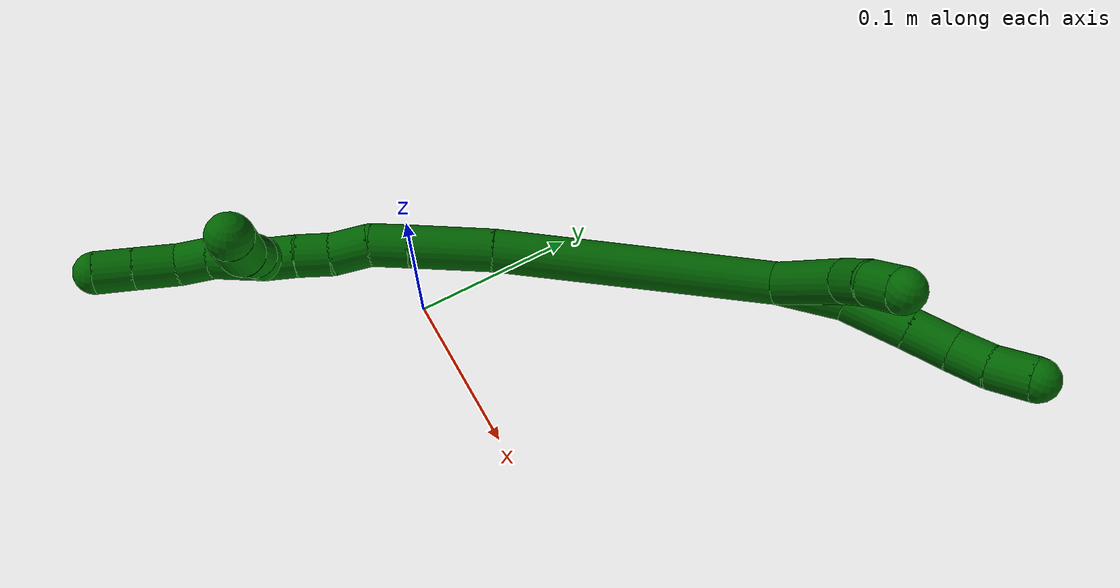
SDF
<sdf version="1.7">
 <world name="default">
  <model name="6">
   <static>0</static>
   <link name="6">
    <collision name="collision-cylinder-e_1_2_8">
     <pose>0.004878 0.018597 -0.003097 -1.73583 0.253167 -0.298197</pose>
     <geometry><cylinder><radius>0.0125</radius><length>0.038948</length></cylinder></geometry>
     <surface>
      <friction><ode><mu>1.16</mu><mu2>1.16</mu2><slip1>0</slip1><slip2>0</slip2></ode></friction>
      <contact><ode><kp>1e+06</kp><kd>1</kd><max_vel>0</max_vel><min_depth>0.001</min_depth></ode></contact>
     </surface>
    </collision>
    <visual name="visual-cylinder-e_1_2_8">
     <pose>0.004878 0.018597 -0.003097 -1.73583 0.253167 -0.298197</pose>
     <geometry><cylinder><radius>0.0125</radius><length>0.038948</length></cylinder></geometry>
     <material><ambient>0 0.392157 0.003922 1</ambient></material>
    </visual>
    <collision name="collision-cylinder-e_2_8_9">
     <pose>0.009577 0.056249 -0.008538 -1.69314 -0.009307 0.010522</pose>
     <geometry><cylinder><radius>0.0125</radius><length>0.038399</length></cylinder></geometry>
     <surface>
      <friction><ode><mu>1.16</mu><mu2>1.16</mu2><slip1>0</slip1><slip2>0</slip2></ode></friction>
      <contact><ode><kp>1e+06</kp><kd>1</kd><max_vel>0</max_vel><min_depth>0.001</min_depth></ode></contact>
     </surface>
    </collision>
    <visual name="visual-cylinder-e_2_8_9">
     <pose>0.009577 0.056249 -0.008538 -1.69314 -0.009307 0.010522</pose>
     <geometry><cylinder><radius>0.0125</radius><length>0.038399</length></cylinder></geometry>
     <material><ambient>0 0.392157 0.003922 1</ambient></material>
    </visual>
    <collision name="collision-cylinder-e_3_9_10">
     <pose>0.00883 0.088305 -0.012533 -1.69727 -0.04327 0.049118</pose>
     <geometry><cylinder><radius>0.0125</radius><length>0.026236</length></cylinder></geometry>
     <surface>
      <friction><ode><mu>1.16</mu><mu2>1.16</mu2><slip1>0</slip1><slip2>0</slip2></ode></friction>
      <contact><ode><kp>1e+06</kp><kd>1</kd><max_vel>0</max_vel><min_depth>0.001</min_depth></ode></contact>
     </surface>
    </collision>
    <visual name="visual-cylinder-e_3_9_10">
     <pose>0.00883 0.088305 -0.012533 -1.69727 -0.04327 0.049118</pose>
     <geometry><cylinder><radius>0.0125</radius><length>0.026236</length></cylinder></geometry>
     <material><ambient>0 0.392157 0.003922 1</ambient></material>
    </visual>
    <collision name="collision-cylinder-e_4_10_11">
     <pose>0.005948 0.111704 -0.017719 -1.89828 -0.207783 0.289052</pose>
     <geometry><cylinder><radius>0.0125</radius><length>0.022447</length></cylinder></geometry>
     <surface>
      <friction><ode><mu>1.16</mu><mu2>1.16</mu2><slip1>0</slip1><slip2>0</slip2></ode></friction>
      <contact><ode><kp>1e+06</kp><kd>1</kd><max_vel>0</max_vel><min_depth>0.001</min_depth></ode></contact>
     </surface>
    </collision>
    <visual name="visual-cylinder-e_4_10_11">
     <pose>0.005948 0.111704 -0.017719 -1.89828 -0.207783 0.289052</pose>
     <geometry><cylinder><radius>0.0125</radius><length>0.022447</length></cylinder></geometry>
     <material><ambient>0 0.392157 0.003922 1</ambient></material>
    </visual>
    <collision name="collision-cylinder-e_5_11_6">
     <pose>0.002191 0.132745 -0.026572 -2.03434 -0.120552 0.194654</pose>
     <geometry><cylinder><radius>0.0125</radius><length>0.023971</length></cylinder></geometry>
     <surface>
      <friction><ode><mu>1.16</mu><mu2>1.16</mu2><slip1>0</slip1><slip2>0</slip2></ode></friction>
      <contact><ode><kp>1e+06</kp><kd>1</kd><max_vel>0</max_vel><min_depth>0.001</min_depth></ode></contact>
     </surface>
    </collision>
    <visual name="visual-cylinder-e_5_11_6">
     <pose>0.002191 0.132745 -0.026572 -2.03434 -0.120552 0.194654</pose>
     <geometry><cylinder><radius>0.0125</radius><length>0.023971</length></cylinder></geometry>
     <material><ambient>0 0.392157 0.003922 1</ambient></material>
    </visual>
    <collision name="collision-cylinder-e_1_2_12">
     <pose>-0.008219 0.016655 -0.021108 -2.47358 -0.296652 0.813216</pose>
     <geometry><cylinder><radius>0.0125</radius><length>0.056232</length></cylinder></geometry>
     <surface>
      <friction><ode><mu>1.16</mu><mu2>1.16</mu2><slip1>0</slip1><slip2>0</slip2></ode></friction>
      <contact><ode><kp>1e+06</kp><kd>1</kd><max_vel>0</max_vel><min_depth>0.001</min_depth></ode></contact>
     </surface>
    </collision>
    <visual name="visual-cylinder-e_1_2_12">
     <pose>-0.008219 0.016655 -0.021108 -2.47358 -0.296652 0.813216</pose>
     <geometry><cylinder><radius>0.0125</radius><length>0.056232</length></cylinder></geometry>
     <material><ambient>0 0.392157 0.003922 1</ambient></material>
    </visual>
    <collision name="collision-cylinder-e_2_12_13">
     <pose>-0.021418 0.039017 -0.050333 -2.52882 -0.465213 1.28551</pose>
     <geometry><cylinder><radius>0.0125</radius><length>0.022203</length></cylinder></geometry>
     <surface>
      <friction><ode><mu>1.16</mu><mu2>1.16</mu2><slip1>0</slip1><slip2>0</slip2></ode></friction>
      <contact><ode><kp>1e+06</kp><kd>1</kd><max_vel>0</max_vel><min_depth>0.001</min_depth></ode></contact>
     </surface>
    </collision>
    <visual name="visual-cylinder-e_2_12_13">
     <pose>-0.021418 0.039017 -0.050333 -2.52882 -0.465213 1.28551</pose>
     <geometry><cylinder><radius>0.0125</radius><length>0.022203</length></cylinder></geometry>
     <material><ambient>0 0.392157 0.003922 1</ambient></material>
    </visual>
    <collision name="collision-cylinder-e_3_13_5">
     <pose>-0.030519 0.052239 -0.064991 -2.28694 -0.39217 0.82262</pose>
     <geometry><cylinder><radius>0.0125</radius><length>0.021565</length></cylinder></geometry>
     <surface>
      <friction><ode><mu>1.16</mu><mu2>1.16</mu2><slip1>0</slip1><slip2>0</slip2></ode></friction>
      <contact><ode><kp>1e+06</kp><kd>1</kd><max_vel>0</max_vel><min_depth>0.001</min_depth></ode></contact>
     </surface>
    </collision>
    <visual name="visual-cylinder-e_3_13_5">
     <pose>-0.030519 0.052239 -0.064991 -2.28694 -0.39217 0.82262</pose>
     <geometry><cylinder><radius>0.0125</radius><length>0.021565</length></cylinder></geometry>
     <material><ambient>0 0.392157 0.003922 1</ambient></material>
    </visual>
    <collision name="collision-cylinder-e_1_2_14">
     <pose>-0.039066 -0.073047 0.007274 1.47154 -0.489059 -0.444359</pose>
     <geometry><cylinder><radius>0.0125</radius><length>0.166312</length></cylinder></geometry>
     <surface>
      <friction><ode><mu>1.16</mu><mu2>1.16</mu2><slip1>0</slip1><slip2>0</slip2></ode></friction>
      <contact><ode><kp>1e+06</kp><kd>1</kd><max_vel>0</max_vel><min_depth>0.001</min_depth></ode></contact>
     </surface>
    </collision>
    <visual name="visual-cylinder-e_1_2_14">
     <pose>-0.039066 -0.073047 0.007274 1.47154 -0.489059 -0.444359</pose>
     <geometry><cylinder><radius>0.0125</radius><length>0.166312</length></cylinder></geometry>
     <material><ambient>0 0.392157 0.003922 1</ambient></material>
    </visual>
    <collision name="collision-cylinder-e_2_14_15">
     <pose>-0.090583 -0.166344 0.017494 1.42636 -0.546601 -0.4758</pose>
     <geometry><cylinder><radius>0.0125</radius><length>0.047905</length></cylinder></geometry>
     <surface>
      <friction><ode><mu>1.16</mu><mu2>1.16</mu2><slip1>0</slip1><slip2>0</slip2></ode></friction>
      <contact><ode><kp>1e+06</kp><kd>1</kd><max_vel>0</max_vel><min_depth>0.001</min_depth></ode></contact>
     </surface>
    </collision>
    <visual name="visual-cylinder-e_2_14_15">
     <pose>-0.090583 -0.166344 0.017494 1.42636 -0.546601 -0.4758</pose>
     <geometry><cylinder><radius>0.0125</radius><length>0.047905</length></cylinder></geometry>
     <material><ambient>0 0.392157 0.003922 1</ambient></material>
    </visual>
    <collision name="collision-cylinder-e_3_15_16">
     <pose>-0.108612 -0.196332 0.02233 1.37898 -0.512237 -0.425285</pose>
     <geometry><cylinder><radius>0.0125</radius><length>0.022764</length></cylinder></geometry>
     <surface>
      <friction><ode><mu>1.16</mu><mu2>1.16</mu2><slip1>0</slip1><slip2>0</slip2></ode></friction>
      <contact><ode><kp>1e+06</kp><kd>1</kd><max_vel>0</max_vel><min_depth>0.001</min_depth></ode></contact>
     </surface>
    </collision>
    <visual name="visual-cylinder-e_3_15_16">
     <pose>-0.108612 -0.196332 0.02233 1.37898 -0.512237 -0.425285</pose>
     <geometry><cylinder><radius>0.0125</radius><length>0.022764</length></cylinder></geometry>
     <material><ambient>0 0.392157 0.003922 1</ambient></material>
    </visual>
    <collision name="collision-cylinder-e_4_16_17">
     <pose>-0.121401 -0.214069 0.028249 1.10428 -0.677892 -0.42774</pose>
     <geometry><cylinder><radius>0.0125</radius><length>0.022992</length></cylinder></geometry>
     <surface>
      <friction><ode><mu>1.16</mu><mu2>1.16</mu2><slip1>0</slip1><slip2>0</slip2></ode></friction>
      <contact><ode><kp>1e+06</kp><kd>1</kd><max_vel>0</max_vel><min_depth>0.001</min_depth></ode></contact>
     </surface>
    </collision>
    <visual name="visual-cylinder-e_4_16_17">
     <pose>-0.121401 -0.214069 0.028249 1.10428 -0.677892 -0.42774</pose>
     <geometry><cylinder><radius>0.0125</radius><length>0.022992</length></cylinder></geometry>
     <material><ambient>0 0.392157 0.003922 1</ambient></material>
    </visual>
    <collision name="collision-cylinder-e_5_17_18">
     <pose>-0.134234 -0.230115 0.034219 1.33391 -0.596638 -0.475049</pose>
     <geometry><cylinder><radius>0.0125</radius><length>0.020018</length></cylinder></geometry>
     <surface>
      <friction><ode><mu>1.16</mu><mu2>1.16</mu2><slip1>0</slip1><slip2>0</slip2></ode></friction>
      <contact><ode><kp>1e+06</kp><kd>1</kd><max_vel>0</max_vel><min_depth>0.001</min_depth></ode></contact>
     </surface>
    </collision>
    <visual name="visual-cylinder-e_5_17_18">
     <pose>-0.134234 -0.230115 0.034219 1.33391 -0.596638 -0.475049</pose>
     <geometry><cylinder><radius>0.0125</radius><length>0.020018</length></cylinder></geometry>
     <material><ambient>0 0.392157 0.003922 1</ambient></material>
    </visual>
    <collision name="collision-cylinder-e_6_18_1">
     <pose>-0.145409 -0.246024 0.038896 1.2362 -0.588254 -0.424287</pose>
     <geometry><cylinder><radius>0.0125</radius><length>0.020008</length></cylinder></geometry>
     <surface>
      <friction><ode><mu>1.16</mu><mu2>1.16</mu2><slip1>0</slip1><slip2>0</slip2></ode></friction>
      <contact><ode><kp>1e+06</kp><kd>1</kd><max_vel>0</max_vel><min_depth>0.001</min_depth></ode></contact>
     </surface>
    </collision>
    <visual name="visual-cylinder-e_6_18_1">
     <pose>-0.145409 -0.246024 0.038896 1.2362 -0.588254 -0.424287</pose>
     <geometry><cylinder><radius>0.0125</radius><length>0.020008</length></cylinder></geometry>
     <material><ambient>0 0.392157 0.003922 1</ambient></material>
    </visual>
    <collision name="collision-cylinder-e_1_1_19">
     <pose>-0.156697 -0.267844 0.046429 1.23959 -0.370671 -0.266003</pose>
     <geometry><cylinder><radius>0.0125</radius><length>0.031674</length></cylinder></geometry>
     <surface>
      <friction><ode><mu>1.16</mu><mu2>1.16</mu2><slip1>0</slip1><slip2>0</slip2></ode></friction>
      <contact><ode><kp>1e+06</kp><kd>1</kd><max_vel>0</max_vel><min_depth>0.001</min_depth></ode></contact>
     </surface>
    </collision>
    <visual name="visual-cylinder-e_1_1_19">
     <pose>-0.156697 -0.267844 0.046429 1.23959 -0.370671 -0.266003</pose>
     <geometry><cylinder><radius>0.0125</radius><length>0.031674</length></cylinder></geometry>
     <material><ambient>0 0.392157 0.003922 1</ambient></material>
    </visual>
    <collision name="collision-cylinder-e_2_19_20">
     <pose>-0.168492 -0.289498 0.054909 1.12466 -0.617584 -0.396774</pose>
     <geometry><cylinder><radius>0.0125</radius><length>0.020924</length></cylinder></geometry>
     <surface>
      <friction><ode><mu>1.16</mu><mu2>1.16</mu2><slip1>0</slip1><slip2>0</slip2></ode></friction>
      <contact><ode><kp>1e+06</kp><kd>1</kd><max_vel>0</max_vel><min_depth>0.001</min_depth></ode></contact>
     </surface>
    </collision>
    <visual name="visual-cylinder-e_2_19_20">
     <pose>-0.168492 -0.289498 0.054909 1.12466 -0.617584 -0.396774</pose>
     <geometry><cylinder><radius>0.0125</radius><length>0.020924</length></cylinder></geometry>
     <material><ambient>0 0.392157 0.003922 1</ambient></material>
    </visual>
    <collision name="collision-cylinder-e_3_20_21">
     <pose>-0.183243 -0.306274 0.059951 1.42201 -0.758012 -0.660874</pose>
     <geometry><cylinder><radius>0.0125</radius><length>0.025291</length></cylinder></geometry>
     <surface>
      <friction><ode><mu>1.16</mu><mu2>1.16</mu2><slip1>0</slip1><slip2>0</slip2></ode></friction>
      <contact><ode><kp>1e+06</kp><kd>1</kd><max_vel>0</max_vel><min_depth>0.001</min_depth></ode></contact>
     </surface>
    </collision>
    <visual name="visual-cylinder-e_3_20_21">
     <pose>-0.183243 -0.306274 0.059951 1.42201 -0.758012 -0.660874</pose>
     <geometry><cylinder><radius>0.0125</radius><length>0.025291</length></cylinder></geometry>
     <material><ambient>0 0.392157 0.003922 1</ambient></material>
    </visual>
    <collision name="collision-cylinder-e_4_21_4">
     <pose>-0.199566 -0.323264 0.062533 1.41765 -0.761524 -0.661293</pose>
     <geometry><cylinder><radius>0.0125</radius><length>0.022112</length></cylinder></geometry>
     <surface>
      <friction><ode><mu>1.16</mu><mu2>1.16</mu2><slip1>0</slip1><slip2>0</slip2></ode></friction>
      <contact><ode><kp>1e+06</kp><kd>1</kd><max_vel>0</max_vel><min_depth>0.001</min_depth></ode></contact>
     </surface>
    </collision>
    <visual name="visual-cylinder-e_4_21_4">
     <pose>-0.199566 -0.323264 0.062533 1.41765 -0.761524 -0.661293</pose>
     <geometry><cylinder><radius>0.0125</radius><length>0.022112</length></cylinder></geometry>
     <material><ambient>0 0.392157 0.003922 1</ambient></material>
    </visual>
    <collision name="collision-cylinder-e_1_1_22">
     <pose>-0.158279 -0.250522 0.031376 -2.82465 -0.596023 2.18211</pose>
     <geometry><cylinder><radius>0.0125</radius><length>0.026076</length></cylinder></geometry>
     <surface>
      <friction><ode><mu>1.16</mu><mu2>1.16</mu2><slip1>0</slip1><slip2>0</slip2></ode></friction>
      <contact><ode><kp>1e+06</kp><kd>1</kd><max_vel>0</max_vel><min_depth>0.001</min_depth></ode></contact>
     </surface>
    </collision>
    <visual name="visual-cylinder-e_1_1_22">
     <pose>-0.158279 -0.250522 0.031376 -2.82465 -0.596023 2.18211</pose>
     <geometry><cylinder><radius>0.0125</radius><length>0.026076</length></cylinder></geometry>
     <material><ambient>0 0.392157 0.003922 1</ambient></material>
    </visual>
    <collision name="collision-cylinder-e_2_22_23">
     <pose>-0.176077 -0.241535 0.007253 -2.75636 -0.610822 2.03359</pose>
     <geometry><cylinder><radius>0.0125</radius><length>0.036543</length></cylinder></geometry>
     <surface>
      <friction><ode><mu>1.16</mu><mu2>1.16</mu2><slip1>0</slip1><slip2>0</slip2></ode></friction>
      <contact><ode><kp>1e+06</kp><kd>1</kd><max_vel>0</max_vel><min_depth>0.001</min_depth></ode></contact>
     </surface>
    </collision>
    <visual name="visual-cylinder-e_2_22_23">
     <pose>-0.176077 -0.241535 0.007253 -2.75636 -0.610822 2.03359</pose>
     <geometry><cylinder><radius>0.0125</radius><length>0.036543</length></cylinder></geometry>
     <material><ambient>0 0.392157 0.003922 1</ambient></material>
    </visual>
    <collision name="collision-cylinder-e_3_23_3">
     <pose>-0.194862 -0.231733 -0.022832 -2.88939 -0.460467 2.14997</pose>
     <geometry><cylinder><radius>0.0125</radius><length>0.037381</length></cylinder></geometry>
     <surface>
      <friction><ode><mu>1.16</mu><mu2>1.16</mu2><slip1>0</slip1><slip2>0</slip2></ode></friction>
      <contact><ode><kp>1e+06</kp><kd>1</kd><max_vel>0</max_vel><min_depth>0.001</min_depth></ode></contact>
     </surface>
    </collision>
    <visual name="visual-cylinder-e_3_23_3">
     <pose>-0.194862 -0.231733 -0.022832 -2.88939 -0.460467 2.14997</pose>
     <geometry><cylinder><radius>0.0125</radius><length>0.037381</length></cylinder></geometry>
     <material><ambient>0 0.392157 0.003922 1</ambient></material>
    </visual>
    <collision name="collision-sphere-3">
     <pose>-0.203168 -0.227554 -0.039046 0 -0 0</pose>
     <geometry><sphere><radius>0.0125</radius></sphere></geometry>
     <surface>
      <friction><ode><mu>1.16</mu><mu2>1.16</mu2><slip1>0</slip1><slip2>0</slip2></ode></friction>
      <contact><ode><kp>1e+06</kp><kd>1</kd><max_vel>0</max_vel><min_depth>0.001</min_depth></ode></contact>
     </surface>
    </collision>
    <visual name="visual-sphere-3">
     <pose>-0.203168 -0.227554 -0.039046 0 -0 0</pose>
     <geometry><sphere><radius>0.0125</radius></sphere></geometry>
     <material><ambient>0 0.392157 0.003922 1</ambient></material>
    </visual>
    <collision name="collision-sphere-23">
     <pose>-0.186557 -0.235911 -0.006617 0 -0 0</pose>
     <geometry><sphere><radius>0.0125</radius></sphere></geometry>
     <surface>
      <friction><ode><mu>1.16</mu><mu2>1.16</mu2><slip1>0</slip1><slip2>0</slip2></ode></friction>
      <contact><ode><kp>1e+06</kp><kd>1</kd><max_vel>0</max_vel><min_depth>0.001</min_depth></ode></contact>
     </surface>
    </collision>
    <visual name="visual-sphere-23">
     <pose>-0.186557 -0.235911 -0.006617 0 -0 0</pose>
     <geometry><sphere><radius>0.0125</radius></sphere></geometry>
     <material><ambient>0 0.392157 0.003922 1</ambient></material>
    </visual>
    <collision name="collision-sphere-22">
     <pose>-0.165598 -0.24716 0.021124 0 -0 0</pose>
     <geometry><sphere><radius>0.0125</radius></sphere></geometry>
     <surface>
      <friction><ode><mu>1.16</mu><mu2>1.16</mu2><slip1>0</slip1><slip2>0</slip2></ode></friction>
      <contact><ode><kp>1e+06</kp><kd>1</kd><max_vel>0</max_vel><min_depth>0.001</min_depth></ode></contact>
     </surface>
    </collision>
    <visual name="visual-sphere-22">
     <pose>-0.165598 -0.24716 0.021124 0 -0 0</pose>
     <geometry><sphere><radius>0.0125</radius></sphere></geometry>
     <material><ambient>0 0.392157 0.003922 1</ambient></material>
    </visual>
    <collision name="collision-sphere-4">
     <pose>-0.207195 -0.331173 0.063753 0 -0 0</pose>
     <geometry><sphere><radius>0.0125</radius></sphere></geometry>
     <surface>
      <friction><ode><mu>1.16</mu><mu2>1.16</mu2><slip1>0</slip1><slip2>0</slip2></ode></friction>
      <contact><ode><kp>1e+06</kp><kd>1</kd><max_vel>0</max_vel><min_depth>0.001</min_depth></ode></contact>
     </surface>
    </collision>
    <visual name="visual-sphere-4">
     <pose>-0.207195 -0.331173 0.063753 0 -0 0</pose>
     <geometry><sphere><radius>0.0125</radius></sphere></geometry>
     <material><ambient>0 0.392157 0.003922 1</ambient></material>
    </visual>
    <collision name="collision-sphere-21">
     <pose>-0.191937 -0.315356 0.061312 0 -0 0</pose>
     <geometry><sphere><radius>0.0125</radius></sphere></geometry>
     <surface>
      <friction><ode><mu>1.16</mu><mu2>1.16</mu2><slip1>0</slip1><slip2>0</slip2></ode></friction>
      <contact><ode><kp>1e+06</kp><kd>1</kd><max_vel>0</max_vel><min_depth>0.001</min_depth></ode></contact>
     </surface>
    </collision>
    <visual name="visual-sphere-21">
     <pose>-0.191937 -0.315356 0.061312 0 -0 0</pose>
     <geometry><sphere><radius>0.0125</radius></sphere></geometry>
     <material><ambient>0 0.392157 0.003922 1</ambient></material>
    </visual>
    <collision name="collision-sphere-20">
     <pose>-0.17455 -0.297192 0.058589 0 -0 0</pose>
     <geometry><sphere><radius>0.0125</radius></sphere></geometry>
     <surface>
      <friction><ode><mu>1.16</mu><mu2>1.16</mu2><slip1>0</slip1><slip2>0</slip2></ode></friction>
      <contact><ode><kp>1e+06</kp><kd>1</kd><max_vel>0</max_vel><min_depth>0.001</min_depth></ode></contact>
     </surface>
    </collision>
    <visual name="visual-sphere-20">
     <pose>-0.17455 -0.297192 0.058589 0 -0 0</pose>
     <geometry><sphere><radius>0.0125</radius></sphere></geometry>
     <material><ambient>0 0.392157 0.003922 1</ambient></material>
    </visual>
    <collision name="collision-sphere-6">
     <pose>0.00075 0.143388 -0.031892 0 -0 0</pose>
     <geometry><sphere><radius>0.0125</radius></sphere></geometry>
     <surface>
      <friction><ode><mu>1.16</mu><mu2>1.16</mu2><slip1>0</slip1><slip2>0</slip2></ode></friction>
      <contact><ode><kp>1e+06</kp><kd>1</kd><max_vel>0</max_vel><min_depth>0.001</min_depth></ode></contact>
     </surface>
    </collision>
    <visual name="visual-sphere-6">
     <pose>0.00075 0.143388 -0.031892 0 -0 0</pose>
     <geometry><sphere><radius>0.0125</radius></sphere></geometry>
     <material><ambient>0 0.392157 0.003922 1</ambient></material>
    </visual>
    <collision name="collision-sphere-11">
     <pose>0.003632 0.122102 -0.021251 0 -0 0</pose>
     <geometry><sphere><radius>0.0125</radius></sphere></geometry>
     <surface>
      <friction><ode><mu>1.16</mu><mu2>1.16</mu2><slip1>0</slip1><slip2>0</slip2></ode></friction>
      <contact><ode><kp>1e+06</kp><kd>1</kd><max_vel>0</max_vel><min_depth>0.001</min_depth></ode></contact>
     </surface>
    </collision>
    <visual name="visual-sphere-11">
     <pose>0.003632 0.122102 -0.021251 0 -0 0</pose>
     <geometry><sphere><radius>0.0125</radius></sphere></geometry>
     <material><ambient>0 0.392157 0.003922 1</ambient></material>
    </visual>
    <collision name="collision-sphere-10">
     <pose>0.008263 0.101306 -0.014187 0 -0 0</pose>
     <geometry><sphere><radius>0.0125</radius></sphere></geometry>
     <surface>
      <friction><ode><mu>1.16</mu><mu2>1.16</mu2><slip1>0</slip1><slip2>0</slip2></ode></friction>
      <contact><ode><kp>1e+06</kp><kd>1</kd><max_vel>0</max_vel><min_depth>0.001</min_depth></ode></contact>
     </surface>
    </collision>
    <visual name="visual-sphere-10">
     <pose>0.008263 0.101306 -0.014187 0 -0 0</pose>
     <geometry><sphere><radius>0.0125</radius></sphere></geometry>
     <material><ambient>0 0.392157 0.003922 1</ambient></material>
    </visual>
    <collision name="collision-sphere-9">
     <pose>0.009398 0.075304 -0.01088 0 -0 0</pose>
     <geometry><sphere><radius>0.0125</radius></sphere></geometry>
     <surface>
      <friction><ode><mu>1.16</mu><mu2>1.16</mu2><slip1>0</slip1><slip2>0</slip2></ode></friction>
      <contact><ode><kp>1e+06</kp><kd>1</kd><max_vel>0</max_vel><min_depth>0.001</min_depth></ode></contact>
     </surface>
    </collision>
    <visual name="visual-sphere-9">
     <pose>0.009398 0.075304 -0.01088 0 -0 0</pose>
     <geometry><sphere><radius>0.0125</radius></sphere></geometry>
     <material><ambient>0 0.392157 0.003922 1</ambient></material>
    </visual>
    <collision name="collision-sphere-2">
     <geometry><sphere><radius>0.0125</radius></sphere></geometry>
     <surface>
      <friction><ode><mu>1.16</mu><mu2>1.16</mu2><slip1>0</slip1><slip2>0</slip2></ode></friction>
      <contact><ode><kp>1e+06</kp><kd>1</kd><max_vel>0</max_vel><min_depth>0.001</min_depth></ode></contact>
     </surface>
    </collision>
    <visual name="visual-sphere-2">
     <geometry><sphere><radius>0.0125</radius></sphere></geometry>
     <material><ambient>0 0.392157 0.003922 1</ambient></material>
    </visual>
    <collision name="collision-sphere-19">
     <pose>-0.162434 -0.281803 0.051229 0 -0 0</pose>
     <geometry><sphere><radius>0.0125</radius></sphere></geometry>
     <surface>
      <friction><ode><mu>1.16</mu><mu2>1.16</mu2><slip1>0</slip1><slip2>0</slip2></ode></friction>
      <contact><ode><kp>1e+06</kp><kd>1</kd><max_vel>0</max_vel><min_depth>0.001</min_depth></ode></contact>
     </surface>
    </collision>
    <visual name="visual-sphere-19">
     <pose>-0.162434 -0.281803 0.051229 0 -0 0</pose>
     <geometry><sphere><radius>0.0125</radius></sphere></geometry>
     <material><ambient>0 0.392157 0.003922 1</ambient></material>
    </visual>
    <collision name="collision-sphere-8">
     <pose>0.009755 0.037194 -0.006195 0 -0 0</pose>
     <geometry><sphere><radius>0.0125</radius></sphere></geometry>
     <surface>
      <friction><ode><mu>1.16</mu><mu2>1.16</mu2><slip1>0</slip1><slip2>0</slip2></ode></friction>
      <contact><ode><kp>1e+06</kp><kd>1</kd><max_vel>0</max_vel><min_depth>0.001</min_depth></ode></contact>
     </surface>
    </collision>
    <visual name="visual-sphere-8">
     <pose>0.009755 0.037194 -0.006195 0 -0 0</pose>
     <geometry><sphere><radius>0.0125</radius></sphere></geometry>
     <material><ambient>0 0.392157 0.003922 1</ambient></material>
    </visual>
    <collision name="collision-sphere-12">
     <pose>-0.016438 0.03331 -0.042217 0 -0 0</pose>
     <geometry><sphere><radius>0.0125</radius></sphere></geometry>
     <surface>
      <friction><ode><mu>1.16</mu><mu2>1.16</mu2><slip1>0</slip1><slip2>0</slip2></ode></friction>
      <contact><ode><kp>1e+06</kp><kd>1</kd><max_vel>0</max_vel><min_depth>0.001</min_depth></ode></contact>
     </surface>
    </collision>
    <visual name="visual-sphere-12">
     <pose>-0.016438 0.03331 -0.042217 0 -0 0</pose>
     <geometry><sphere><radius>0.0125</radius></sphere></geometry>
     <material><ambient>0 0.392157 0.003922 1</ambient></material>
    </visual>
    <collision name="collision-sphere-13">
     <pose>-0.026398 0.044723 -0.05845 0 -0 0</pose>
     <geometry><sphere><radius>0.0125</radius></sphere></geometry>
     <surface>
      <friction><ode><mu>1.16</mu><mu2>1.16</mu2><slip1>0</slip1><slip2>0</slip2></ode></friction>
      <contact><ode><kp>1e+06</kp><kd>1</kd><max_vel>0</max_vel><min_depth>0.001</min_depth></ode></contact>
     </surface>
    </collision>
    <visual name="visual-sphere-13">
     <pose>-0.026398 0.044723 -0.05845 0 -0 0</pose>
     <geometry><sphere><radius>0.0125</radius></sphere></geometry>
     <material><ambient>0 0.392157 0.003922 1</ambient></material>
    </visual>
    <collision name="collision-sphere-5">
     <pose>-0.03464 0.059756 -0.071532 0 -0 0</pose>
     <geometry><sphere><radius>0.0125</radius></sphere></geometry>
     <surface>
      <friction><ode><mu>1.16</mu><mu2>1.16</mu2><slip1>0</slip1><slip2>0</slip2></ode></friction>
      <contact><ode><kp>1e+06</kp><kd>1</kd><max_vel>0</max_vel><min_depth>0.001</min_depth></ode></contact>
     </surface>
    </collision>
    <visual name="visual-sphere-5">
     <pose>-0.03464 0.059756 -0.071532 0 -0 0</pose>
     <geometry><sphere><radius>0.0125</radius></sphere></geometry>
     <material><ambient>0 0.392157 0.003922 1</ambient></material>
    </visual>
    <collision name="collision-sphere-14">
     <pose>-0.078133 -0.146094 0.014548 0 -0 0</pose>
     <geometry><sphere><radius>0.0125</radius></sphere></geometry>
     <surface>
      <friction><ode><mu>1.16</mu><mu2>1.16</mu2><slip1>0</slip1><slip2>0</slip2></ode></friction>
      <contact><ode><kp>1e+06</kp><kd>1</kd><max_vel>0</max_vel><min_depth>0.001</min_depth></ode></contact>
     </surface>
    </collision>
    <visual name="visual-sphere-14">
     <pose>-0.078133 -0.146094 0.014548 0 -0 0</pose>
     <geometry><sphere><radius>0.0125</radius></sphere></geometry>
     <material><ambient>0 0.392157 0.003922 1</ambient></material>
    </visual>
    <collision name="collision-sphere-15">
     <pose>-0.103033 -0.186593 0.020439 0 -0 0</pose>
     <geometry><sphere><radius>0.0125</radius></sphere></geometry>
     <surface>
      <friction><ode><mu>1.16</mu><mu2>1.16</mu2><slip1>0</slip1><slip2>0</slip2></ode></friction>
      <contact><ode><kp>1e+06</kp><kd>1</kd><max_vel>0</max_vel><min_depth>0.001</min_depth></ode></contact>
     </surface>
    </collision>
    <visual name="visual-sphere-15">
     <pose>-0.103033 -0.186593 0.020439 0 -0 0</pose>
     <geometry><sphere><radius>0.0125</radius></sphere></geometry>
     <material><ambient>0 0.392157 0.003922 1</ambient></material>
    </visual>
    <collision name="collision-sphere-16">
     <pose>-0.114191 -0.206072 0.024222 0 -0 0</pose>
     <geometry><sphere><radius>0.0125</radius></sphere></geometry>
     <surface>
      <friction><ode><mu>1.16</mu><mu2>1.16</mu2><slip1>0</slip1><slip2>0</slip2></ode></friction>
      <contact><ode><kp>1e+06</kp><kd>1</kd><max_vel>0</max_vel><min_depth>0.001</min_depth></ode></contact>
     </surface>
    </collision>
    <visual name="visual-sphere-16">
     <pose>-0.114191 -0.206072 0.024222 0 -0 0</pose>
     <geometry><sphere><radius>0.0125</radius></sphere></geometry>
     <material><ambient>0 0.392157 0.003922 1</ambient></material>
    </visual>
    <collision name="collision-sphere-17">
     <pose>-0.12861 -0.222067 0.032276 0 -0 0</pose>
     <geometry><sphere><radius>0.0125</radius></sphere></geometry>
     <surface>
      <friction><ode><mu>1.16</mu><mu2>1.16</mu2><slip1>0</slip1><slip2>0</slip2></ode></friction>
      <contact><ode><kp>1e+06</kp><kd>1</kd><max_vel>0</max_vel><min_depth>0.001</min_depth></ode></contact>
     </surface>
    </collision>
    <visual name="visual-sphere-17">
     <pose>-0.12861 -0.222067 0.032276 0 -0 0</pose>
     <geometry><sphere><radius>0.0125</radius></sphere></geometry>
     <material><ambient>0 0.392157 0.003922 1</ambient></material>
    </visual>
    <collision name="collision-sphere-18">
     <pose>-0.139858 -0.238163 0.036162 0 -0 0</pose>
     <geometry><sphere><radius>0.0125</radius></sphere></geometry>
     <surface>
      <friction><ode><mu>1.16</mu><mu2>1.16</mu2><slip1>0</slip1><slip2>0</slip2></ode></friction>
      <contact><ode><kp>1e+06</kp><kd>1</kd><max_vel>0</max_vel><min_depth>0.001</min_depth></ode></contact>
     </surface>
    </collision>
    <visual name="visual-sphere-18">
     <pose>-0.139858 -0.238163 0.036162 0 -0 0</pose>
     <geometry><sphere><radius>0.0125</radius></sphere></geometry>
     <material><ambient>0 0.392157 0.003922 1</ambient></material>
    </visual>
    <collision name="collision-sphere-1">
     <pose>-0.15096 -0.253885 0.041629 0 -0 0</pose>
     <geometry><sphere><radius>0.0125</radius></sphere></geometry>
     <surface>
      <friction><ode><mu>1.16</mu><mu2>1.16</mu2><slip1>0</slip1><slip2>0</slip2></ode></friction>
      <contact><ode><kp>1e+06</kp><kd>1</kd><max_vel>0</max_vel><min_depth>0.001</min_depth></ode></contact>
     </surface>
    </collision>
    <visual name="visual-sphere-1">
     <pose>-0.15096 -0.253885 0.041629 0 -0 0</pose>
     <geometry><sphere><radius>0.0125</radius></sphere></geometry>
     <material><ambient>0 0.392157 0.003922 1</ambient></material>
    </visual>
    <inertial>
     <pose>-0.076932 -0.104899 0.006532 0 -0 0</pose>
     <mass>0.75</mass>
     <inertia>
      <ixx>0.000199</ixx>
      <ixy>0</ixy>
      <ixz>0</ixz>
      <iyy>-1.8e-05</iyy>
      <iyz>0</iyz>
      <izz>0.000531</izz>
     </inertia>
    </inertial>
   </link>
   <pose>0.112925 0.178923 0.053632 -3.10749 0.268011 2.05091</pose>
  </model>
 </world>
</sdf>
